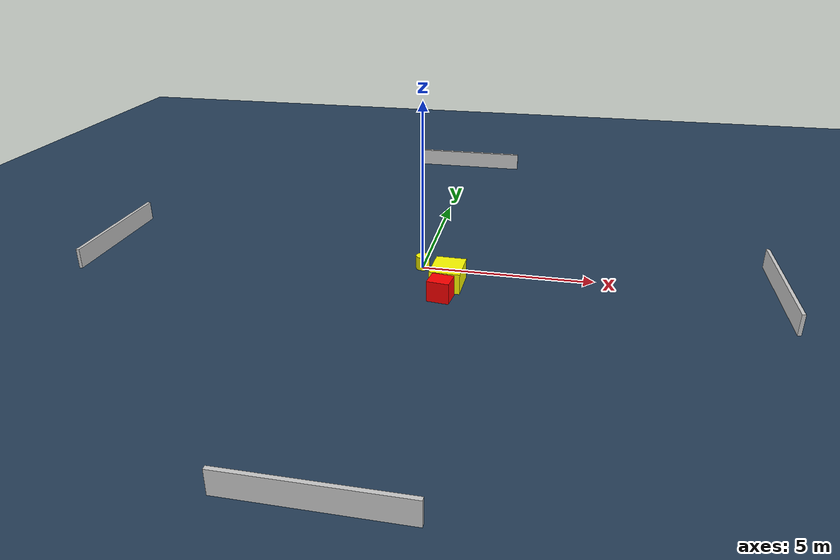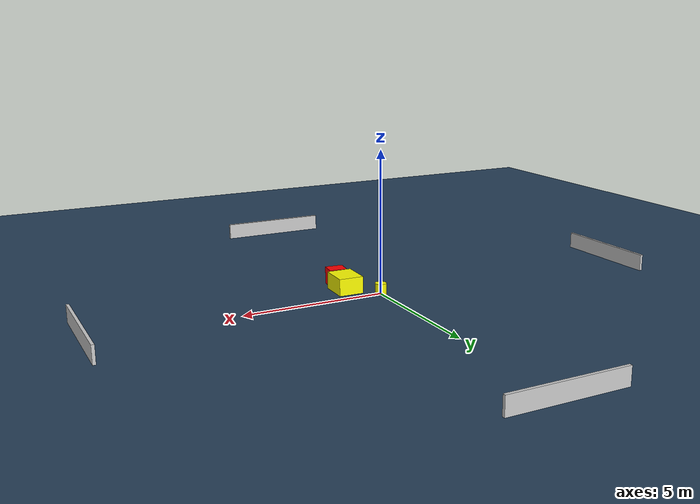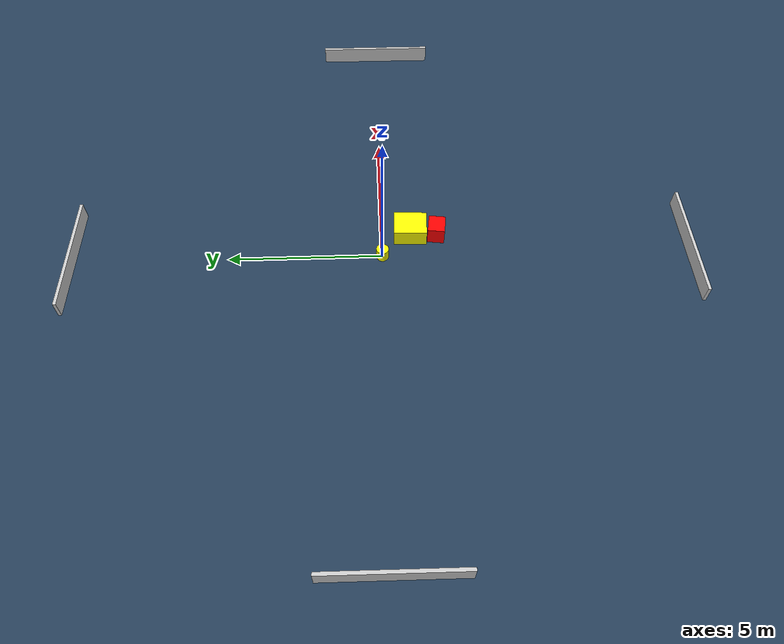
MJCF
<?xml version="1.0" ?>
<mujoco model="generated_environment">
  <option timestep="0.01" integrator="RK4" cone="elliptic"/>
  <default>
    <geom density="1"/>
  </default>
  <asset>
    <texture builtin="gradient" height="3072" name="skybox" rgb1="0.3 0.5 0.7" rgb2="0 0 0" type="skybox" width="512"/>
    <texture builtin="checker" height="300" name="groundplane" rgb1="0.2 0.3 0.4" rgb2="0.1 0.2 0.3" type="2d" width="300"/>
    <material name="groundplane" reflectance="0.2" texrepeat="5 5" texture="groundplane"/>
  </asset>
  <worldbody>
    <light dir="0 0 -1" directional="true" pos="0 0 1.5"/>
    <geom condim="3" friction="0.5 0.005 0.001" material="groundplane" name="floor" pos="0 0 0" size="0 0 0.05" type="plane"/>
    <body name="walls">
      <geom name="wall_1" condim="4" pos="-10.0 0.0 0.3" rgba="0.800000011920929 0.800000011920929 0.800000011920929 1.0" size="0.05 2.0 0.3" type="box"/>
      <geom name="wall_2" condim="4" pos="10.0 0.0 0.3" rgba="0.800000011920929 0.800000011920929 0.800000011920929 1.0" size="0.05 2.0 0.3" type="box"/>
      <geom name="wall_3" condim="4" pos="0.0 -10.0 0.3" rgba="0.800000011920929 0.800000011920929 0.800000011920929 1.0" size="2.0 0.05 0.3" type="box"/>
      <geom name="wall_4" condim="4" pos="0.0 10.0 0.3" rgba="0.800000011920929 0.800000011920929 0.800000011920929 1.0" size="2.0 0.05 0.3" type="box"/>
    </body>
    <body name="robot">
      <joint name="joint_x" type="slide" pos="0 0 0" axis="1 0 0"/>
      <joint name="joint_y" type="slide" pos="0 0 0" axis="0 1 0"/>
      <geom name="robot" type="cylinder" pos="0.0 0.0 0.2" size="0.2 0.2 0.0" mass="5.0" friction="1.0 0.005 0.0001" condim="4" rgba="1.0 1.0 0.0 1.0"/>
    </body>
    <body name="obstacle_1_movable">
      <geom name="obstacle_1_movable" condim="4" pos="0.9084146766460397 -0.9334431721393279 0.3" euler="0 0 268.0680093291405" friction="0.0 0.005 0.001" rgba="1.0 1.0 0.0 1.0" size="0.5362151010414129 0.435971429613002 0.3" type="box" mass="0.1"/>
      <joint type="free"/>
    </body>
    <body name="obstacle_2_static">
      <geom name="obstacle_2_static" condim="4" pos="0.8458614279764812 -1.8007872215853789 0.3" euler="0 0 172.697176437888" friction="0.0 0.005 0.001" rgba="1.0 0.0 0.0 1.0" size="0.3141865497334132 0.2769948107244216 0.3" type="box"/>
    </body>
  </worldbody>
  <actuator>
    <motor name="actuator_x" joint="joint_x" gear="1" ctrlrange="-1 1"/>
    <motor name="actuator_y" joint="joint_y" gear="1" ctrlrange="-1 1"/>
  </actuator>
</mujoco>
